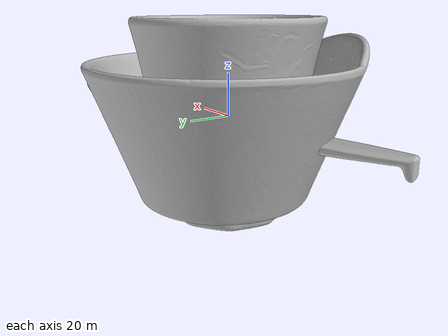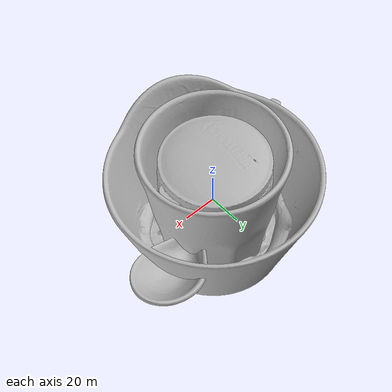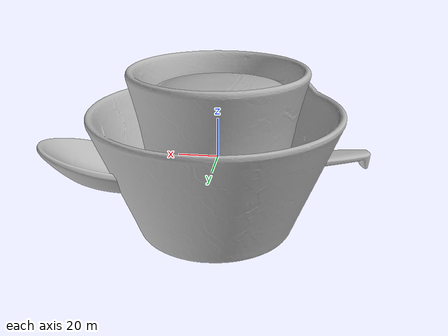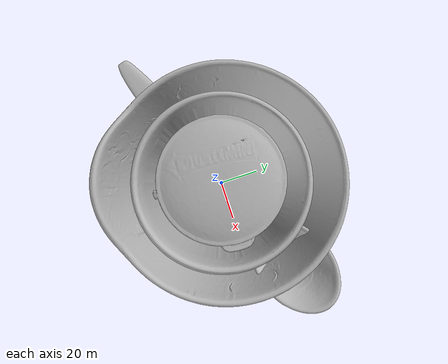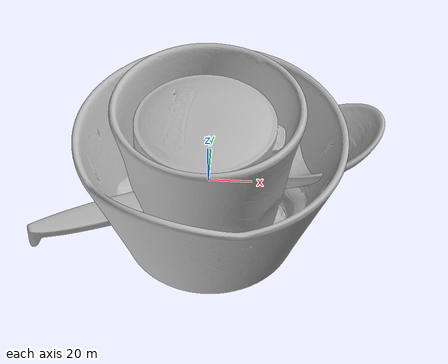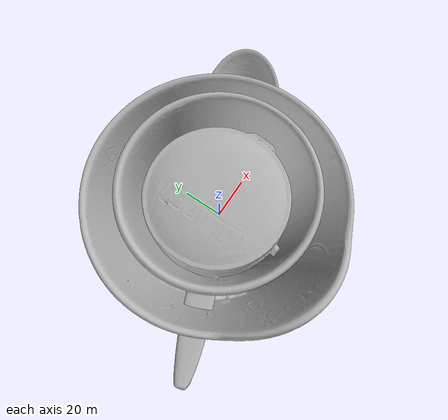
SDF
<sdf version="1.4">
 <world name="default">
  <light name="light1" type="point">
   <pose>0 0 1 0 0 0</pose>
   <diffuse>3 3 3 1</diffuse>
   <specular>3 3 3 1</specular>
  </light>
  <light name="light2" type="point">
   <pose>0 0.5 2 0 0 0</pose>
   <diffuse>1 1 1 1</diffuse>
   <specular>1 1 1 1</specular>
  </light>
  <light name="light3" type="point">
   <pose>0 0.5 2 0 0 0</pose>
   <diffuse>3 3 3 1</diffuse>
   <specular>3 3 3 1</specular>
  </light>
  <scene><ambient>0.7 0.7 0.7</ambient></scene>
  <model name="bottle1">
   <link name="link_bottle1">
    <collision name="default">
     <geometry>
      <mesh><uri>model://green_arrow/collision_meshes/collision.obj</uri><scale>1.0 1.0 1.0</scale></mesh>
     </geometry>
     <surface>
      <friction><ode><mu>0.5</mu><mu2>0.5</mu2></ode></friction>
      <contact><ode><max_vel>0</max_vel><min_depth>0.0001</min_depth><kp>1e8</kp></ode></contact>
     </surface>
    </collision>
    <visual name="default">
     <geometry>
      <mesh><uri>model://green_arrow/visual_meshes/visual.dae</uri><scale>1.0 1.0 1.0</scale></mesh>
     </geometry>
    </visual>
    <inertial>
     <mass>0.2764224410057068</mass>
     <pose>0.0005358477937988937 -0.0008270691032521427 0.002210969105362892 -0.06332196008274972 0.012988210902137025 0.674142157837799</pose>
     <inertia>
      <ixx>0.00020051825</ixx>
      <iyy>0.00020021446</iyy>
      <izz>0.00012947427</izz>
      <ixy>0</ixy>
      <ixz>0</ixz>
      <iyz>0</iyz>
     </inertia>
    </inertial>
   </link>
   <pose>-0.06894653290510178 0.0726713240146637 0.038961656391620636 0.04528467945092644 0.02425653246106119 -2.3324777842976134</pose>
  </model>
  <model name="bottle2">
   <link name="link_bottle2">
    <collision name="default">
     <geometry>
      <mesh><uri>model://pure_zhen/collision_meshes/collision.obj</uri><scale>1.0 1.0 1.0</scale></mesh>
     </geometry>
     <surface>
      <friction><ode><mu>0.5</mu><mu2>0.5</mu2></ode></friction>
      <contact><ode><max_vel>0</max_vel><min_depth>0.0001</min_depth><kp>1e8</kp></ode></contact>
     </surface>
    </collision>
    <visual name="default">
     <geometry>
      <mesh><uri>model://pure_zhen/visual_meshes/visual.dae</uri><scale>1.0 1.0 1.0</scale></mesh>
     </geometry>
    </visual>
    <inertial>
     <mass>0.2372884750366211</mass>
     <pose>-8.582299778936431e-05 0.0002452346670906991 -0.0015797418309375644 -0.027641670524606855 0.005623077019143168 0.30585846122319743</pose>
     <inertia>
      <ixx>0.0007112664</ixx>
      <iyy>0.00071145216</iyy>
      <izz>7.51383e-05</izz>
      <ixy>0</ixy>
      <ixz>0</ixz>
      <iyz>0</iyz>
     </inertia>
    </inertial>
   </link>
   <pose>0.183901846408844 0.2315630465745926 0.09194843471050262 0.019489122313628766 -0.016092125400271967 -2.035783423929842</pose>
  </model>
  <model name="silverware1">
   <link name="link_silverware1">
    <collision name="default">
     <geometry>
      <mesh><uri>model://doraemon_spoon/collision_meshes/collision.obj</uri><scale>1.0 1.0 1.0</scale></mesh>
     </geometry>
     <surface>
      <friction><ode><mu>0.5</mu><mu2>0.5</mu2></ode></friction>
      <contact><ode><max_vel>0</max_vel><min_depth>0.0001</min_depth><kp>1e8</kp></ode></contact>
     </surface>
    </collision>
    <visual name="default">
     <geometry>
      <mesh><uri>model://doraemon_spoon/visual_meshes/visual.dae</uri><scale>1.0 1.0 1.0</scale></mesh>
     </geometry>
    </visual>
    <inertial>
     <mass>0.020818473771214485</mass>
     <pose>-0.022165074944496155 -0.0006374582881107926 -0.0033325462136417627 -0.009147017253597407 0.0738041759980984 -0.014123826591698564</pose>
     <inertia>
      <ixx>1.6307007e-06</ixx>
      <iyy>4.631433e-05</iyy>
      <izz>4.7101734e-05</izz>
      <ixy>0</ixy>
      <ixz>0</ixz>
      <iyz>0</iyz>
     </inertia>
    </inertial>
   </link>
   <pose>0.21938195824623108 0.20933376252651215 0.014971545897424221 0.021920186304890017 -0.00431733959319477 -2.7380836923694907</pose>
  </model>
  <model name="stationery1">
   <link name="link_stationery1">
    <collision name="default">
     <geometry>
      <mesh><uri>model://correction_fuid/collision_meshes/collision.obj</uri><scale>1.0 1.0 1.0</scale></mesh>
     </geometry>
     <surface>
      <friction><ode><mu>0.5</mu><mu2>0.5</mu2></ode></friction>
      <contact><ode><max_vel>0</max_vel><min_depth>0.0001</min_depth><kp>1e8</kp></ode></contact>
     </surface>
    </collision>
    <visual name="default">
     <geometry>
      <mesh><uri>model://correction_fuid/visual_meshes/visual.dae</uri><scale>1.0 1.0 1.0</scale></mesh>
     </geometry>
    </visual>
    <inertial>
     <mass>0.03337494283914566</mass>
     <pose>-0.00012557735317386687 -0.0009722886024974287 -0.001618212671019137 -0.010846603423614418 0.019488389217657873 -0.01599245375892703</pose>
     <inertia>
      <ixx>3.2324202e-05</ixx>
      <iyy>1.9563013e-06</iyy>
      <izz>3.3165503e-05</izz>
      <ixy>0</ixy>
      <ixz>0</ixz>
      <iyz>0</iyz>
     </inertia>
    </inertial>
   </link>
   <pose>-0.07970184832811356 0.1651533544063568 0.009632833302021027 -0.0017271538490404971 -0.05616837656634916 3.0086383911866954</pose>
  </model>
  <model name="bowl1">
   <link name="link_bowl1">
    <collision name="default">
     <geometry>
      <mesh><uri>model://hello_kitty_bowl/collision_meshes/collision.obj</uri><scale>1.0 1.0 1.0</scale></mesh>
     </geometry>
     <surface>
      <friction><ode><mu>0.5</mu><mu2>0.5</mu2></ode></friction>
      <contact><ode><max_vel>0</max_vel><min_depth>0.0001</min_depth><kp>1e8</kp></ode></contact>
     </surface>
    </collision>
    <visual name="default">
     <geometry>
      <mesh><uri>model://hello_kitty_bowl/visual_meshes/visual.dae</uri><scale>1.0 1.0 1.0</scale></mesh>
     </geometry>
    </visual>
    <inertial>
     <mass>0.11590971797704697</mass>
     <pose>-0.0015402117278426886 0.0004577837826218456 -0.0080512510612607 0.004152729053700843 -0.12227221811834889 0.04345084117661168</pose>
     <inertia>
      <ixx>0.00017210246</ixx>
      <iyy>0.00018182951</iyy>
      <izz>0.00025734986</izz>
      <ixy>0</ixy>
      <ixz>0</ixz>
      <iyz>0</iyz>
     </inertia>
    </inertial>
   </link>
   <pose>0.00295543042011559 0.16914069652557373 0.03741401433944702 3.770622027352282e-05 2.1596992588979505e-06 -2.0326232963895206</pose>
  </model>
  <model name="cup1">
   <link name="link_cup1">
    <collision name="default">
     <geometry>
      <mesh><uri>model://hello_kitty_cup/collision_meshes/collision.obj</uri><scale>1.0 1.0 1.0</scale></mesh>
     </geometry>
     <surface>
      <friction><ode><mu>0.5</mu><mu2>0.5</mu2></ode></friction>
      <contact><ode><max_vel>0</max_vel><min_depth>0.0001</min_depth><kp>1e8</kp></ode></contact>
     </surface>
    </collision>
    <visual name="default">
     <geometry>
      <mesh><uri>model://hello_kitty_cup/visual_meshes/visual.dae</uri><scale>1.0 1.0 1.0</scale></mesh>
     </geometry>
    </visual>
    <inertial>
     <mass>0.06483803689479828</mass>
     <pose>0.00027251249412074685 0.0002795030304696411 0.003044978016987443 0.05779149237921037 0.007964744961503711 -0.020451485374324563</pose>
     <inertia>
      <ixx>8.928983e-05</ixx>
      <iyy>9.0285175e-05</iyy>
      <izz>7.52867e-05</izz>
      <ixy>0</ixy>
      <ixz>0</ixz>
      <iyz>0</iyz>
     </inertia>
    </inertial>
   </link>
   <pose>0.1359366774559021 -0.1346888393163681 0.04621399939060211 -0.005712981796971862 0.01078677927887691 1.445077538307521</pose>
  </model>
  <model name="plate1">
   <link name="link_plate1">
    <collision name="default">
     <geometry>
      <mesh><uri>model://hello_kitty_plate/collision_meshes/collision.obj</uri><scale>1.0 1.0 1.0</scale></mesh>
     </geometry>
     <surface>
      <friction><ode><mu>0.5</mu><mu2>0.5</mu2></ode></friction>
      <contact><ode><max_vel>0</max_vel><min_depth>0.0001</min_depth><kp>1e8</kp></ode></contact>
     </surface>
    </collision>
    <visual name="default">
     <geometry>
      <mesh><uri>model://hello_kitty_plate/visual_meshes/visual.dae</uri><scale>1.0 1.0 1.0</scale></mesh>
     </geometry>
    </visual>
    <inertial>
     <mass>0.035439908504486084</mass>
     <pose>0.007314295507967472 0.00028937257593497634 -0.0027947179041802883 -0.00010432032854243346 -0.007054443681780748 -0.014449040989024118</pose>
     <inertia>
      <ixx>6.833875e-05</ixx>
      <iyy>0.00012897578</iyy>
      <izz>0.00019583687</izz>
      <ixy>0</ixy>
      <ixz>0</ixz>
      <iyz>0</iyz>
     </inertia>
    </inertial>
   </link>
   <pose>0.07571855932474136 0.3188779354095459 0.008290793746709824 0.00044090632988991516 0.004183948581203621 3.0764336976346747</pose>
  </model>
  <model name="box4">
   <link name="link_box4">
    <collision name="default">
     <geometry>
      <mesh><uri>model://wooden_puzzle1/collision_meshes/collision.obj</uri><scale>1.0 1.0 1.0</scale></mesh>
     </geometry>
     <surface>
      <friction><ode><mu>0.5</mu><mu2>0.5</mu2></ode></friction>
      <contact><ode><max_vel>0</max_vel><min_depth>0.0001</min_depth><kp>1e8</kp></ode></contact>
     </surface>
    </collision>
    <visual name="default">
     <geometry>
      <mesh><uri>model://wooden_puzzle1/visual_meshes/visual.dae</uri><scale>1.0 1.0 1.0</scale></mesh>
     </geometry>
    </visual>
    <inertial>
     <mass>0.022725893184542656</mass>
     <pose>-0.00017350679263472557 7.972260937094688e-05 -9.191554272547364e-05 -0.07784633272711022 -0.26361483493671084 -0.5528696267966513</pose>
     <inertia>
      <ixx>4.2877546e-06</ixx>
      <iyy>4.205213e-06</iyy>
      <izz>4.2553816e-06</izz>
      <ixy>0</ixy>
      <ixz>0</ixz>
      <iyz>0</iyz>
     </inertia>
    </inertial>
   </link>
   <pose>-0.08307064324617386 -0.14625251293182373 0.016802016645669937 0.010511927282475752 -0.009455219688886806 -1.5706804031445876</pose>
  </model>
  <physics type="ode">
   <max_contacts>50</max_contacts>
   <ode>
    <solver><type>quick</type><iters>75</iters></solver>
    <constraints>
     <contact_max_correcting_vel>0</contact_max_correcting_vel>
     <contact_surface_layer>0</contact_surface_layer>
    </constraints>
   </ode>
  </physics>
 </world>
</sdf>
